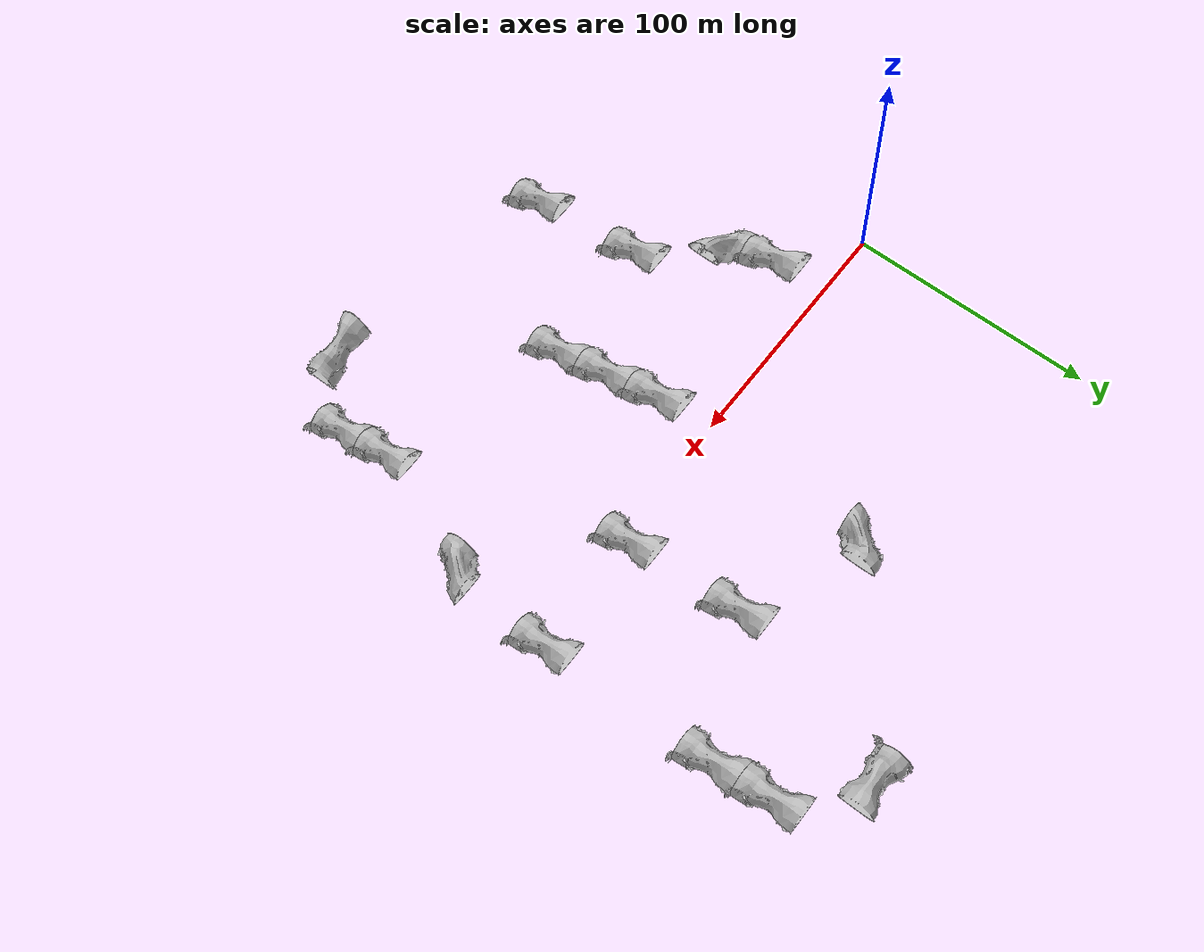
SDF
<sdf version="1.6">
 <world name="cosmos">
  <physics name="1ms" type="ode">
   <max_step_size>0.01</max_step_size>
   <real_time_factor>1.0</real_time_factor>
   <real_time_update_rate>100</real_time_update_rate>
  </physics>
  <scene>
   <ambient>0.588235 0.588235 0.588235 1</ambient>
   <background>0.980392 0.980392 0.980392 1</background>
   <grid>true</grid>
   <origin_visual>true</origin_visual>
  </scene>
  <plugin filename="gz-sim-physics-system" name="gz::sim::systems::Physics"/>
  <plugin filename="gz-sim-user-commands-system" name="gz::sim::systems::UserCommands"/>
  <plugin filename="gz-sim-scene-broadcaster-system" name="gz::sim::systems::SceneBroadcaster"/>
  <plugin filename="gz-sim-imu-system" name="gz::sim::systems::Imu"/>
  <plugin filename="gz-sim-sensors-system" name="gz::sim::systems::Sensors">
   <render_engine>ogre2</render_engine>
  </plugin>
  <include>
   <name>tile_8</name>
   <uri>model://Cave Elevation</uri>
   <pose>175.000000 125.000000 0.000000 0 0 1.570796</pose>
  </include>
  <include>
   <name>tile_13</name>
   <uri>model://Cave Elevation</uri>
   <pose>200.000000 100.000000 0.000000 0 0 3.141593</pose>
  </include>
  <include>
   <name>tile_15</name>
   <uri>model://Cave Corner 02</uri>
   <pose>100.000000 75.000000 0.000000 0 0 -3.141593</pose>
  </include>
  <include>
   <name>tile_18</name>
   <uri>model://Cave Elevation</uri>
   <pose>200.000000 75.000000 -10.000000 0 0 3.141593</pose>
  </include>
  <include>
   <name>tile_21</name>
   <uri>model://Cave Elevation</uri>
   <pose>150.000000 50.000000 -10.000000 0 0 3.141593</pose>
  </include>
  <include>
   <name>tile_29</name>
   <uri>model://Cave Elevation</uri>
   <pose>150.000000 0.000000 -20.000000 0 0 3.141593</pose>
  </include>
  <include>
   <name>tile_30</name>
   <uri>model://Cave Elevation</uri>
   <pose>200.000000 0.000000 -20.000000 0 0 3.141593</pose>
  </include>
  <include>
   <name>tile_31</name>
   <uri>model://Cave Elevation</uri>
   <pose>25.000000 -25.000000 -10.000000 0 0 3.141593</pose>
  </include>
  <include>
   <name>tile_32</name>
   <uri>model://Cave Elevation</uri>
   <pose>100.000000 -25.000000 -10.000000 0 0 3.141593</pose>
  </include>
  <include>
   <name>tile_35</name>
   <uri>model://Cave Corner 02</uri>
   <pose>25.000000 -50.000000 -10.000000 0 0 -1.570796</pose>
  </include>
  <include>
   <name>tile_37</name>
   <uri>model://Cave Elevation</uri>
   <pose>100.000000 -50.000000 -20.000000 0 0 3.141593</pose>
  </include>
  <include>
   <name>tile_40</name>
   <uri>model://Cave Corner 02</uri>
   <pose>200.000000 -50.000000 -20.000000 0 0 0.000000</pose>
  </include>
  <include>
   <name>tile_41</name>
   <uri>model://Cave Elevation</uri>
   <pose>50.000000 -75.000000 -20.000000 0 0 3.141593</pose>
  </include>
  <include>
   <name>tile_42</name>
   <uri>model://Cave Elevation</uri>
   <pose>100.000000 -75.000000 -30.000000 0 0 3.141593</pose>
  </include>
  <include>
   <name>tile_46</name>
   <uri>model://Cave Elevation</uri>
   <pose>175.000000 -100.000000 -30.000000 0 0 3.141593</pose>
  </include>
  <include>
   <name>tile_47</name>
   <uri>model://Cave Elevation</uri>
   <pose>50.000000 -125.000000 -30.000000 0 0 3.141593</pose>
  </include>
  <include>
   <name>tile_49</name>
   <uri>model://Cave Elevation</uri>
   <pose>175.000000 -125.000000 -40.000000 0 0 3.141593</pose>
  </include>
  <include>
   <name>tile_54</name>
   <uri>model://Cave Elevation</uri>
   <pose>150.000000 -150.000000 -40.000000 0 0 -1.570796</pose>
  </include>
 </world>
</sdf>

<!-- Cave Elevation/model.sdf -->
<sdf version="1.6">
  <model name="Cave Elevation">
    <pose>0 0 0 0 0 0</pose>
    <static>true</static>
    <link name="link">
      <collision name="collision">
        <geometry>
          <mesh>
            <uri>model://Cave Elevation/meshes/caveelevation.dae</uri>
         </mesh>
        </geometry>
      </collision>
      <visual name="visual">
        <geometry>
          <mesh>
            <uri>model://Cave Elevation/meshes/caveelevation.dae</uri>
         </mesh>
        </geometry>
      </visual>
    </link>
  </model>
 </sdf>

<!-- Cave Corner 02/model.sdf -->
<sdf version="1.6">
  <model name="Cave Corner 02">
    <pose>0 0 0 0 0 0</pose>
    <static>true</static>
    <link name="link">
      <collision name="collision">
        <geometry>
          <mesh>
           <uri>model://Cave Corner 02/meshes/cavecorner02.dae</uri>
         </mesh>
        </geometry>
      </collision>
      <visual name="visual">
        <geometry>
          <mesh>
           <uri>model://Cave Corner 02/meshes/cavecorner02.dae</uri>
         </mesh>
        </geometry>
      </visual>
    </link>
  </model>
 </sdf>
